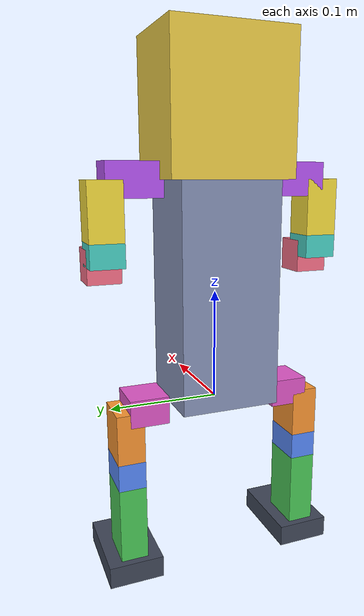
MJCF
<mujoco model="pikachu_sample_links">
  <compiler angle="radian" />

  <worldbody>
    <body name="base_link">
      <inertial pos="0 0 0.1" mass="2.16" diaginertia="0.008658 0.008352 0.00261" />
      <geom size="0.04 0.045 0.1" pos="0 0 0.1" type="box" contype="1" conaffinity="1" group="0" rgba="0.55 0.6 0.75 1" density="1500.000000" />
      <body name="head_link" pos="0 0 0.26">
        <inertial pos="0 0 0" mass="1.782" diaginertia="0.003935 0.003341 0.003" />
        <joint name="head_joint" range="-0.8 0.8" actuatorfrcrange="-2 2" axis="0 1 0" />
        <geom size="0.045 0.055 0.06" type="box" contype="1" conaffinity="1" group="0" rgba="0.98 0.85 0.3 1" density="1500.000000" />
      <geom size="0.045 0.055 0.06" type="box" contype="0" conaffinity="0" group="1" rgba="0.98 0.85 0.3 1" density="0" />
      </body>
      <body name="left_hip_pitch_link" pos="0 0.0515 0">
        <inertial pos="0 0.01775 0" quat="0 0.707107 0 0.707107" mass="0.05325" diaginertia="1.3e-05 1e-05 8e-06" />
        <joint name="left_hip_pitch_joint" range="0 2.44" actuatorfrcrange="-12.5 12.5" axis="0 -1 0" />
        <geom size="0.02 0.01775 0.0125" pos="0 0.01775 0" type="box" contype="1" conaffinity="1" group="0" rgba="0.9 0.35 0.8 1" density="1500.000000" />
        <body name="left_hip_roll_link" pos="0 0.0355 0">
          <inertial pos="0 0 -0.023" quat="0.707107 0 0 0.707107" mass="0.069" diaginertia="2.1e-05 1.6e-05 1.3e-05" />
          <joint name="left_hip_roll_joint" range="-0.09 0.26" actuatorfrcrange="-9 9" axis="1 0 0" />
          <geom size="0.02 0.0125 0.023" pos="0 0 -0.023" type="box" contype="1" conaffinity="1" group="0" rgba="1 0.6 0.2 1" density="1500.000000" />
          <body name="left_hip_yaw_link" pos="0 0 -0.046">
            <inertial pos="0 0 -0.0125" quat="0.5 0.5 0.5 0.5" mass="0.0375" diaginertia="7e-06 7e-06 4e-06" />
            <joint name="left_hip_yaw_joint" range="-0.09 0.26" actuatorfrcrange="-9 9" />
            <geom size="0.02 0.0125 0.0125" pos="0 0 -0.0125" type="box" contype="1" conaffinity="1" group="0" rgba="0.35 0.55 1 1" density="1500.000000" />
            <body name="left_knee_link" pos="0 0 -0.025">
              <inertial pos="0 0 -0.035" quat="0.707107 0 0 0.707107" mass="0.105" diaginertia="5.7e-05 4.8e-05 1.9e-05" />
              <joint name="left_knee_joint" range="0 1.57" actuatorfrcrange="-12.5 12.5" axis="0 1 0" />
              <geom size="0.02 0.0125 0.035" pos="0 0 -0.035" type="box" contype="1" conaffinity="1" group="0" rgba="0.3 0.8 0.35 1" density="1500.000000" />
              <body name="left_ankle_link" pos="0 0 -0.07">
                <inertial pos="0.0133333 0 -0.01" quat="0 0.707107 0 0.707107" mass="0.12" diaginertia="8.9e-05 6.8e-05 2.9e-05" />
                <joint name="left_ankle_joint" range="-0.52 1.05" actuatorfrcrange="-9 9" axis="0 -1 0" />
                <geom size="0.04 0.025 0.01" pos="0.0133333 0 -0.01" type="box" contype="1" conaffinity="1" group="0" rgba="0.25 0.28 0.35 1" density="1500.000000" />
              <geom size="0.04 0.025 0.01" pos="0.0133333 0 -0.01" type="box" contype="0" conaffinity="0" group="1" rgba="0.25 0.28 0.35 1" density="0" />
              </body>
            <geom size="0.02 0.0125 0.035" pos="0 0 -0.035" type="box" contype="0" conaffinity="0" group="1" rgba="0.3 0.8 0.35 1" density="0" />
              </body>
          <geom size="0.02 0.0125 0.0125" pos="0 0 -0.0125" type="box" contype="0" conaffinity="0" group="1" rgba="0.35 0.55 1 1" density="0" />
            </body>
        <geom size="0.02 0.0125 0.023" pos="0 0 -0.023" type="box" contype="0" conaffinity="0" group="1" rgba="1 0.6 0.2 1" density="0" />
          </body>
      <geom size="0.02 0.01775 0.0125" pos="0 0.01775 0" type="box" contype="0" conaffinity="0" group="1" rgba="0.9 0.35 0.8 1" density="0" />
        </body>
      <body name="right_hip_pitch_link" pos="0 -0.0515 0">
        <inertial pos="0 -0.01775 0" quat="0 0.707107 0 0.707107" mass="0.05325" diaginertia="1.3e-05 1e-05 8e-06" />
        <joint name="right_hip_pitch_joint" range="0 2.44" actuatorfrcrange="-12.5 12.5" axis="0 -1 0" />
        <geom size="0.02 0.01775 0.0125" pos="0 -0.01775 0" type="box" contype="1" conaffinity="1" group="0" rgba="0.9 0.35 0.8 1" density="1500.000000" />
        <body name="right_hip_roll_link" pos="0 -0.0355 0">
          <inertial pos="0 0 -0.023" quat="0.707107 0 0 0.707107" mass="0.069" diaginertia="2.1e-05 1.6e-05 1.3e-05" />
          <joint name="right_hip_roll_joint" range="-0.09 0.26" actuatorfrcrange="-9 9" axis="-1 0 0" />
          <geom size="0.02 0.0125 0.023" pos="0 0 -0.023" type="box" contype="1" conaffinity="1" group="0" rgba="1 0.6 0.2 1" density="1500.000000" />
          <body name="right_hip_yaw_link" pos="0 0 -0.046">
            <inertial pos="0 0 -0.0125" quat="0.5 0.5 0.5 0.5" mass="0.0375" diaginertia="7e-06 7e-06 4e-06" />
            <joint name="right_hip_yaw_joint" range="-0.09 0.26" actuatorfrcrange="-9 9" axis="0 0 -1" />
            <geom size="0.02 0.0125 0.0125" pos="0 0 -0.0125" type="box" contype="1" conaffinity="1" group="0" rgba="0.35 0.55 1 1" density="1500.000000" />
            <body name="right_knee_link" pos="0 0 -0.025">
              <inertial pos="0 0 -0.035" quat="0.707107 0 0 0.707107" mass="0.105" diaginertia="5.7e-05 4.8e-05 1.9e-05" />
              <joint name="right_knee_joint" range="0 1.57" actuatorfrcrange="-12.5 12.5" axis="0 1 0" />
              <geom size="0.02 0.0125 0.035" pos="0 0 -0.035" type="box" contype="1" conaffinity="1" group="0" rgba="0.3 0.8 0.35 1" density="1500.000000" />
              <body name="right_ankle_link" pos="0 0 -0.07">
                <inertial pos="0.0133333 0 -0.01" quat="0 0.707107 0 0.707107" mass="0.12" diaginertia="8.9e-05 6.8e-05 2.9e-05" />
                <joint name="right_ankle_joint" range="-0.52 1.05" actuatorfrcrange="-9 9" axis="0 -1 0" />
                <geom size="0.04 0.025 0.01" pos="0.0133333 0 -0.01" type="box" contype="1" conaffinity="1" group="0" rgba="0.25 0.28 0.35 1" density="1500.000000" />
              <geom size="0.04 0.025 0.01" pos="0.0133333 0 -0.01" type="box" contype="0" conaffinity="0" group="1" rgba="0.25 0.28 0.35 1" density="0" />
              </body>
            <geom size="0.02 0.0125 0.035" pos="0 0 -0.035" type="box" contype="0" conaffinity="0" group="1" rgba="0.3 0.8 0.35 1" density="0" />
              </body>
          <geom size="0.02 0.0125 0.0125" pos="0 0 -0.0125" type="box" contype="0" conaffinity="0" group="1" rgba="0.35 0.55 1 1" density="0" />
            </body>
        <geom size="0.02 0.0125 0.023" pos="0 0 -0.023" type="box" contype="0" conaffinity="0" group="1" rgba="1 0.6 0.2 1" density="0" />
          </body>
      <geom size="0.02 0.01775 0.0125" pos="0 -0.01775 0" type="box" contype="0" conaffinity="0" group="1" rgba="0.9 0.35 0.8 1" density="0" />
        </body>
      <body name="left_arm_pitch_link" pos="0 0.0515 0.2">
        <inertial pos="0 0.0245 0" quat="0.707107 0.707107 0 0" mass="0.06615" diaginertia="1.8e-05 1.8e-05 1e-05" />
        <joint name="left_arm_pitch_joint" range="-1.57 1.57" actuatorfrcrange="-2 2" axis="0 -1 0" />
        <geom size="0.015 0.0245 0.015" pos="0 0.0245 0" type="box" contype="1" conaffinity="1" group="0" rgba="0.75 0.35 1 1" density="1500.000000" />
        <body name="left_arm_roll_link" pos="0 0.049 0">
          <inertial pos="0 0 -0.0255" mass="0.06885" diaginertia="2e-05 2e-05 1e-05" />
          <joint name="left_arm_roll_joint" range="-1.57 1.57" actuatorfrcrange="-2 2" axis="1 0 0" />
          <geom size="0.015 0.015 0.0255" pos="0 0 -0.0255" type="box" contype="1" conaffinity="1" group="0" rgba="1 0.9 0.25 1" density="1500.000000" />
          <body name="left_arm_yaw_link" pos="0 0 -0.051">
            <inertial pos="0 0 -0.0105" quat="0.5 0.5 -0.5 0.5" mass="0.02835" diaginertia="4e-06 3e-06 3e-06" />
            <joint name="left_arm_yaw_joint" range="-1.57 1.57" actuatorfrcrange="-2 2" />
            <geom size="0.015 0.015 0.0105" pos="0 0 -0.0105" type="box" contype="1" conaffinity="1" group="0" rgba="0.3 0.85 0.8 1" density="1500.000000" />
            <body name="left_elbow_link" pos="0 0 -0.021" quat="0.707388 0 -0.706825 0">
              <inertial pos="0 0 -0.015" mass="0.0405" diaginertia="6e-06 6e-06 6e-06" />
              <joint name="left_elbow_joint" range="-1.57 1.57" actuatorfrcrange="-2 2" axis="0 -1 0" />
              <geom size="0.015 0.015 0.015" pos="0 0 -0.015" type="box" contype="1" conaffinity="1" group="0" rgba="1 0.45 0.55 1" density="1500.000000" />
            <geom size="0.015 0.015 0.015" pos="0 0 -0.015" type="box" contype="0" conaffinity="0" group="1" rgba="1 0.45 0.55 1" density="0" />
            </body>
          <geom size="0.015 0.015 0.0105" pos="0 0 -0.0105" type="box" contype="0" conaffinity="0" group="1" rgba="0.3 0.85 0.8 1" density="0" />
            </body>
        <geom size="0.015 0.015 0.0255" pos="0 0 -0.0255" type="box" contype="0" conaffinity="0" group="1" rgba="1 0.9 0.25 1" density="0" />
          </body>
      <geom size="0.015 0.0245 0.015" pos="0 0.0245 0" type="box" contype="0" conaffinity="0" group="1" rgba="0.75 0.35 1 1" density="0" />
        </body>
      <body name="right_arm_pitch_link" pos="0 -0.0515 0.2">
        <inertial pos="0 -0.0245 0" quat="0.707107 0.707107 0 0" mass="0.06615" diaginertia="1.8e-05 1.8e-05 1e-05" />
        <joint name="right_arm_pitch_joint" range="-1.57 1.57" actuatorfrcrange="-2 2" axis="0 -1 0" />
        <geom size="0.015 0.0245 0.015" pos="0 -0.0245 0" type="box" contype="1" conaffinity="1" group="0" rgba="0.75 0.35 1 1" density="1500.000000" />
        <body name="right_arm_roll_link" pos="0 -0.049 0">
          <inertial pos="0 0 -0.0255" mass="0.06885" diaginertia="2e-05 2e-05 1e-05" />
          <joint name="right_arm_roll_joint" range="-1.57 1.57" actuatorfrcrange="-2 2" axis="-1 0 0" />
          <geom size="0.015 0.015 0.0255" pos="0 0 -0.0255" type="box" contype="1" conaffinity="1" group="0" rgba="1 0.9 0.25 1" density="1500.000000" />
          <body name="right_arm_yaw_link" pos="0 0 -0.051">
            <inertial pos="0 0 -0.0105" quat="0.5 0.5 -0.5 0.5" mass="0.02835" diaginertia="4e-06 3e-06 3e-06" />
            <joint name="right_arm_yaw_joint" range="-1.57 1.57" actuatorfrcrange="-2 2" axis="0 0 -1" />
            <geom size="0.015 0.015 0.0105" pos="0 0 -0.0105" type="box" contype="1" conaffinity="1" group="0" rgba="0.3 0.85 0.8 1" density="1500.000000" />
            <body name="right_elbow_link" pos="0 0 -0.021" quat="0.707388 0 -0.706825 0">
              <inertial pos="0 0 -0.015" mass="0.0405" diaginertia="6e-06 6e-06 6e-06" />
              <joint name="right_elbow_joint" range="-1.57 1.57" actuatorfrcrange="-2 2" axis="0 1 0" />
              <geom size="0.015 0.015 0.015" pos="0 0 -0.015" type="box" contype="1" conaffinity="1" group="0" rgba="1 0.45 0.55 1" density="1500.000000" />
            <geom size="0.015 0.015 0.015" pos="0 0 -0.015" type="box" contype="0" conaffinity="0" group="1" rgba="1 0.45 0.55 1" density="0" />
            </body>
          <geom size="0.015 0.015 0.0105" pos="0 0 -0.0105" type="box" contype="0" conaffinity="0" group="1" rgba="0.3 0.85 0.8 1" density="0" />
            </body>
        <geom size="0.015 0.015 0.0255" pos="0 0 -0.0255" type="box" contype="0" conaffinity="0" group="1" rgba="1 0.9 0.25 1" density="0" />
          </body>
      <geom size="0.015 0.0245 0.015" pos="0 -0.0245 0" type="box" contype="0" conaffinity="0" group="1" rgba="0.75 0.35 1 1" density="0" />
        </body>
    <geom size="0.04 0.045 0.1" pos="0 0 0.1" type="box" contype="0" conaffinity="0" group="1" rgba="0.55 0.6 0.75 1" density="0" />
      </body>
  </worldbody>
</mujoco>
